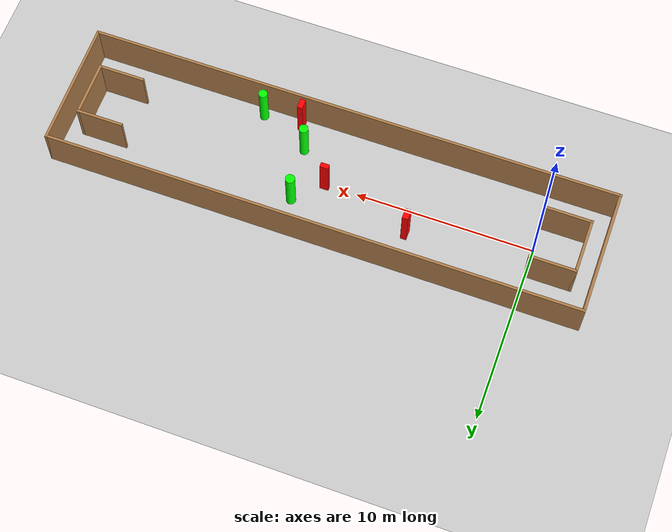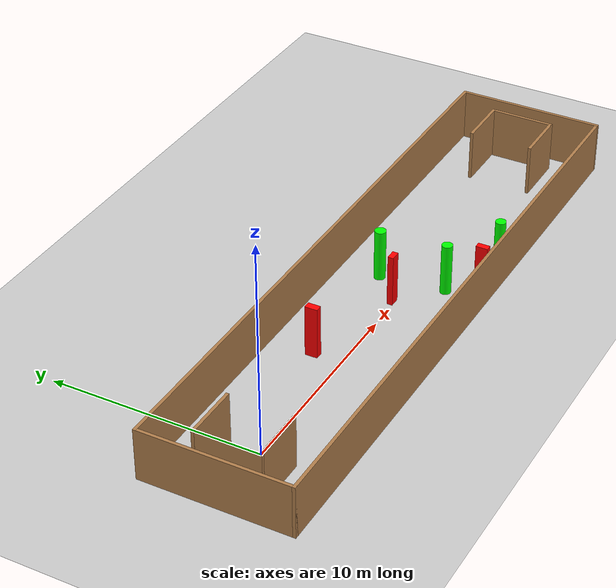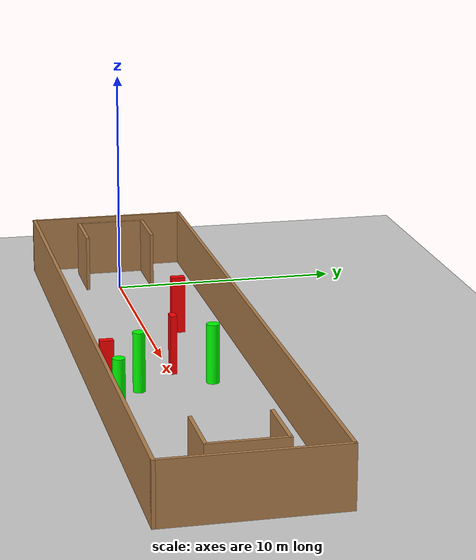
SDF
<sdf version="1.7">
 <world name="default">
  <light name="sun" type="directional">
   <pose>0 0 10 0 -0 0</pose>
   <diffuse>0.8 0.8 0.8 1</diffuse>
   <specular>0.2 0.2 0.2 1</specular>
   <attenuation>
    <range>1000</range>
    <constant>0.9</constant>
    <linear>0.01</linear>
    <quadratic>0.001</quadratic>
   </attenuation>
   <direction>-0.5 0.1 -0.9</direction>
   <spot><inner_angle>0</inner_angle><outer_angle>0</outer_angle><falloff>0</falloff></spot>
  </light>
  <model name="ground_plane">
   <static>1</static>
   <link name="link">
    <collision name="collision">
     <geometry><plane><normal>0 0 1</normal><size>100 100</size></plane></geometry>
     <surface>
      <contact><collide_bitmask>65535</collide_bitmask></contact>
      <friction><ode><mu>100</mu><mu2>50</mu2></ode></friction>
     </surface>
    </collision>
    <visual name="visual">
     <cast_shadows>0</cast_shadows>
     <geometry><plane><normal>0 0 1</normal><size>100 100</size></plane></geometry>
     <material>
      <script><uri>file://media/materials/scripts/gazebo.material</uri><name>Gazebo/Grey</name></script>
     </material>
    </visual>
   </link>
  </model>
  <gravity>0 0 -9.8</gravity>
  <magnetic_field>6e-06 2.3e-05 -4.2e-05</magnetic_field>
  <atmosphere type="adiabatic"/>
  <physics type="ode">
   <max_step_size>0.001</max_step_size>
   <real_time_factor>1</real_time_factor>
   <real_time_update_rate>1000</real_time_update_rate>
  </physics>
  <scene><ambient>0.4 0.4 0.4 1</ambient><background>0.7 0.7 0.7 1</background><shadows>1</shadows></scene>
  <spherical_coordinates>
   <surface_model>EARTH_WGS84</surface_model>
   <latitude_deg>0</latitude_deg>
   <longitude_deg>0</longitude_deg>
   <elevation>0</elevation>
   <heading_deg>0</heading_deg>
  </spherical_coordinates>
  <model name="my_base_walls">
   <link name="Wall_0">
    <collision name="Wall_0_Collision">
     <geometry><box><size>7.15 0.15 2.5</size></box></geometry>
     <pose>0 0 1.25 0 -0 0</pose>
    </collision>
    <visual name="Wall_0_Visual">
     <pose>0 0 1.25 0 -0 0</pose>
     <geometry><box><size>7.15 0.15 2.5</size></box></geometry>
     <material>
      <script><uri>file://media/materials/scripts/gazebo.material</uri><name>Gazebo/Wood</name></script>
      <ambient>1 1 1 1</ambient>
     </material>
     <meta><layer>0</layer></meta>
    </visual>
    <pose>-15 0 0 0 -0 1.5708</pose>
   </link>
   <link name="Wall_10">
    <collision name="Wall_10_Collision">
     <geometry><box><size>2.65 0.15 2.5</size></box></geometry>
     <pose>0 0 1.25 0 -0 0</pose>
    </collision>
    <visual name="Wall_10_Visual">
     <pose>0 0 1.25 0 -0 0</pose>
     <geometry><box><size>2.65 0.15 2.5</size></box></geometry>
     <material>
      <script><uri>file://media/materials/scripts/gazebo.material</uri><name>Gazebo/Wood</name></script>
      <ambient>1 1 1 1</ambient>
     </material>
     <meta><layer>0</layer></meta>
    </visual>
    <pose>-12.75 -1.5 0 0 -0 0</pose>
   </link>
   <link name="Wall_12">
    <collision name="Wall_12_Collision">
     <geometry><box><size>2.65 0.15 2.5</size></box></geometry>
     <pose>0 0 1.25 0 -0 0</pose>
    </collision>
    <visual name="Wall_12_Visual">
     <pose>0 0 1.25 0 -0 0</pose>
     <geometry><box><size>2.65 0.15 2.5</size></box></geometry>
     <material>
      <script><uri>file://media/materials/scripts/gazebo.material</uri><name>Gazebo/Wood</name></script>
      <ambient>1 1 1 1</ambient>
     </material>
     <meta><layer>0</layer></meta>
    </visual>
    <pose>-12.75 1.5 0 0 -0 0</pose>
   </link>
   <link name="Wall_14">
    <collision name="Wall_14_Collision">
     <geometry><box><size>3.15 0.15 2.5</size></box></geometry>
     <pose>0 0 1.25 0 -0 0</pose>
    </collision>
    <visual name="Wall_14_Visual">
     <pose>0 0 1.25 0 -0 0</pose>
     <geometry><box><size>3.15 0.15 2.5</size></box></geometry>
     <material>
      <script><uri>file://media/materials/scripts/gazebo.material</uri><name>Gazebo/Wood</name></script>
      <ambient>1 1 1 1</ambient>
     </material>
     <meta><layer>0</layer></meta>
    </visual>
    <pose>14 0 0 0 -0 -1.5708</pose>
   </link>
   <link name="Wall_15">
    <collision name="Wall_15_Collision">
     <geometry><box><size>2.65 0.15 2.5</size></box></geometry>
     <pose>0 0 1.25 0 -0 0</pose>
    </collision>
    <visual name="Wall_15_Visual">
     <pose>0 0 1.25 0 -0 0</pose>
     <geometry><box><size>2.65 0.15 2.5</size></box></geometry>
     <material>
      <script><uri>file://media/materials/scripts/gazebo.material</uri><name>Gazebo/Wood</name></script>
      <ambient>1 1 1 1</ambient>
     </material>
     <meta><layer>0</layer></meta>
    </visual>
    <pose>12.75 -1.5 0 0 -0 3.14159</pose>
   </link>
   <link name="Wall_17">
    <collision name="Wall_17_Collision">
     <geometry><box><size>2.65 0.15 2.5</size></box></geometry>
     <pose>0 0 1.25 0 -0 0</pose>
    </collision>
    <visual name="Wall_17_Visual">
     <pose>0 0 1.25 0 -0 0</pose>
     <geometry><box><size>2.65 0.15 2.5</size></box></geometry>
     <material>
      <script><uri>file://media/materials/scripts/gazebo.material</uri><name>Gazebo/Wood</name></script>
      <ambient>1 1 1 1</ambient>
     </material>
     <meta><layer>0</layer></meta>
    </visual>
    <pose>12.75 1.5 0 0 -0 3.14159</pose>
   </link>
   <link name="Wall_2">
    <collision name="Wall_2_Collision">
     <geometry><box><size>30.15 0.15 2.5</size></box></geometry>
     <pose>0 0 1.25 0 -0 0</pose>
    </collision>
    <visual name="Wall_2_Visual">
     <pose>0 0 1.25 0 -0 0</pose>
     <geometry><box><size>30.15 0.15 2.5</size></box></geometry>
     <material>
      <script><uri>file://media/materials/scripts/gazebo.material</uri><name>Gazebo/Wood</name></script>
      <ambient>1 1 1 1</ambient>
     </material>
     <meta><layer>0</layer></meta>
    </visual>
    <pose>-0 -3.5 0 0 -0 0</pose>
   </link>
   <link name="Wall_4">
    <collision name="Wall_4_Collision">
     <geometry><box><size>30.15 0.15 2.5</size></box></geometry>
     <pose>0 0 1.25 0 -0 0</pose>
    </collision>
    <visual name="Wall_4_Visual">
     <pose>0 0 1.25 0 -0 0</pose>
     <geometry><box><size>30.15 0.15 2.5</size></box></geometry>
     <material>
      <script><uri>file://media/materials/scripts/gazebo.material</uri><name>Gazebo/Wood</name></script>
      <ambient>1 1 1 1</ambient>
     </material>
     <meta><layer>0</layer></meta>
    </visual>
    <pose>-0 3.5 0 0 -0 0</pose>
   </link>
   <link name="Wall_6">
    <collision name="Wall_6_Collision">
     <geometry><box><size>7.15 0.15 2.5</size></box></geometry>
     <pose>0 0 1.25 0 -0 0</pose>
    </collision>
    <visual name="Wall_6_Visual">
     <pose>0 0 1.25 0 -0 0</pose>
     <geometry><box><size>7.15 0.15 2.5</size></box></geometry>
     <material>
      <script><uri>file://media/materials/scripts/gazebo.material</uri><name>Gazebo/Wood</name></script>
      <ambient>1 1 1 1</ambient>
     </material>
     <meta><layer>0</layer></meta>
    </visual>
    <pose>15 0 0 0 -0 -1.5708</pose>
   </link>
   <link name="Wall_9">
    <collision name="Wall_9_Collision">
     <geometry><box><size>3.15 0.15 2.5</size></box></geometry>
     <pose>0 0 1.25 0 -0 0</pose>
    </collision>
    <visual name="Wall_9_Visual">
     <pose>0 0 1.25 0 -0 0</pose>
     <geometry><box><size>3.15 0.15 2.5</size></box></geometry>
     <material>
      <script><uri>file://media/materials/scripts/gazebo.material</uri><name>Gazebo/Wood</name></script>
      <ambient>1 1 1 1</ambient>
     </material>
     <meta><layer>0</layer></meta>
    </visual>
    <pose>-14 0 0 0 -0 -1.5708</pose>
   </link>
   <static>1</static>
   <pose>11.5 0 0 0 -0 0</pose>
  </model>
  <model name="cylinder1">
   <static>1</static>
   <link name="link">
    <inertial>
     <mass>1</mass>
     <inertia><ixx>0.5</ixx><ixy>0</ixy><ixz>0</ixz><iyy>0.5</iyy><iyz>0</iyz><izz>1</izz></inertia>
    </inertial>
    <collision name="collision">
     <geometry><cylinder><radius>0.267554705456919</radius><length>2.5</length></cylinder></geometry>
    </collision>
    <visual name="visual">
     <geometry><cylinder><radius>0.267554705456919</radius><length>2.5</length></cylinder></geometry>
     <material>
      <ambient>0 1 0 1</ambient>
      <diffuse>0 1 0 1</diffuse>
      <specular>0.1 0.1 0.1 1</specular>
      <emissive>0 0 0 0</emissive>
     </material>
    </visual>
   </link>
   <pose>13.259123659716279 1.4971254294241731 1.25 0 0 0</pose>
  </model>
  <model name="cylinder2">
   <static>1</static>
   <link name="link">
    <inertial>
     <mass>1</mass>
     <inertia><ixx>0.5</ixx><ixy>0</ixy><ixz>0</ixz><iyy>0.5</iyy><iyz>0</iyz><izz>1</izz></inertia>
    </inertial>
    <collision name="collision">
     <geometry><cylinder><radius>0.25401361818205587</radius><length>2.5</length></cylinder></geometry>
    </collision>
    <visual name="visual">
     <geometry><cylinder><radius>0.25401361818205587</radius><length>2.5</length></cylinder></geometry>
     <material>
      <ambient>0 1 0 1</ambient>
      <diffuse>0 1 0 1</diffuse>
      <specular>0.1 0.1 0.1 1</specular>
      <emissive>0 0 0 0</emissive>
     </material>
    </visual>
   </link>
   <pose>13.633116253858756 -1.60031803115275 1.25 0 0 0</pose>
  </model>
  <model name="cylinder3">
   <static>1</static>
   <link name="link">
    <inertial>
     <mass>1</mass>
     <inertia><ixx>0.5</ixx><ixy>0</ixy><ixz>0</ixz><iyy>0.5</iyy><iyz>0</iyz><izz>1</izz></inertia>
    </inertial>
    <collision name="collision">
     <geometry><cylinder><radius>0.24963435400451844</radius><length>2.5</length></cylinder></geometry>
    </collision>
    <visual name="visual">
     <geometry><cylinder><radius>0.24963435400451844</radius><length>2.5</length></cylinder></geometry>
     <material>
      <ambient>0 1 0 1</ambient>
      <diffuse>0 1 0 1</diffuse>
      <specular>0.1 0.1 0.1 1</specular>
      <emissive>0 0 0 0</emissive>
     </material>
    </visual>
   </link>
   <pose>16.47309407483207 -2.900666775992314 1.25 0 0 0</pose>
  </model>
  <model name="box1">
   <static>1</static>
   <link name="link">
    <inertial>
     <mass>1</mass>
     <inertia><ixx>0.083</ixx><ixy>0</ixy><ixz>0</ixz><iyy>0.083</iyy><iyz>0</iyz><izz>0.083</izz></inertia>
    </inertial>
    <collision name="collision">
     <geometry><box><size>0.4870526462045492 0.26884242707772044 2.5</size></box></geometry>
    </collision>
    <visual name="visual">
     <geometry><box><size>0.4870526462045492 0.26884242707772044 2.5</size></box></geometry>
     <material>
      <ambient>1 0 0 1</ambient>
      <diffuse>1 0 0 1</diffuse>
      <specular>0.1 0.1 0.1 1</specular>
      <emissive>0 0 0 0</emissive>
     </material>
    </visual>
    <sensor name="my_contact" type="contact">
     <contact><collision>box_collision</collision><topic>__default_topic__</topic></contact>
    </sensor>
   </link>
   <pose>11.797385051645332 0.1380082967364138 1.25 0 0 0</pose>
  </model>
  <model name="box2">
   <static>1</static>
   <link name="link">
    <inertial>
     <mass>1</mass>
     <inertia><ixx>0.083</ixx><ixy>0</ixy><ixz>0</ixz><iyy>0.083</iyy><iyz>0</iyz><izz>0.083</izz></inertia>
    </inertial>
    <collision name="collision">
     <geometry><box><size>0.335394181203427 0.5935895452862995 2.5</size></box></geometry>
    </collision>
    <visual name="visual">
     <geometry><box><size>0.335394181203427 0.5935895452862995 2.5</size></box></geometry>
     <material>
      <ambient>1 0 0 1</ambient>
      <diffuse>1 0 0 1</diffuse>
      <specular>0.1 0.1 0.1 1</specular>
      <emissive>0 0 0 0</emissive>
     </material>
    </visual>
    <sensor name="my_contact" type="contact">
     <contact><collision>box_collision</collision><topic>__default_topic__</topic></contact>
    </sensor>
   </link>
   <pose>6.769952202638658 1.3690742984333868 1.25 0 0 0</pose>
  </model>
  <model name="box3">
   <static>1</static>
   <link name="link">
    <inertial>
     <mass>1</mass>
     <inertia><ixx>0.083</ixx><ixy>0</ixy><ixz>0</ixz><iyy>0.083</iyy><iyz>0</iyz><izz>0.083</izz></inertia>
    </inertial>
    <collision name="collision">
     <geometry><box><size>0.29883753103082683 0.5634166575023762 2.5</size></box></geometry>
    </collision>
    <visual name="visual">
     <geometry><box><size>0.29883753103082683 0.5634166575023762 2.5</size></box></geometry>
     <material>
      <ambient>1 0 0 1</ambient>
      <diffuse>1 0 0 1</diffuse>
      <specular>0.1 0.1 0.1 1</specular>
      <emissive>0 0 0 0</emissive>
     </material>
    </visual>
    <sensor name="my_contact" type="contact">
     <contact><collision>box_collision</collision><topic>__default_topic__</topic></contact>
    </sensor>
   </link>
   <pose>14.285002114313034 -3.0164984082338626 1.25 0 0 0</pose>
  </model>
 </world>
</sdf>
